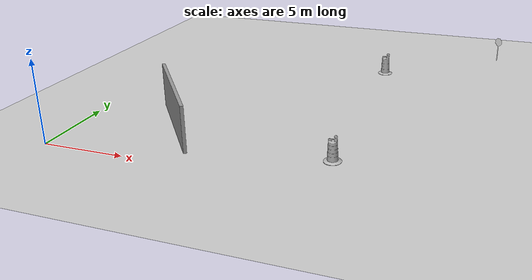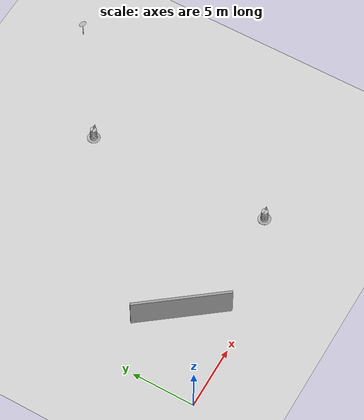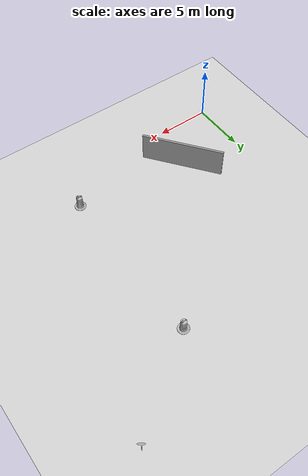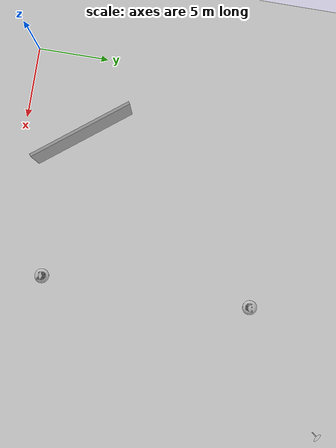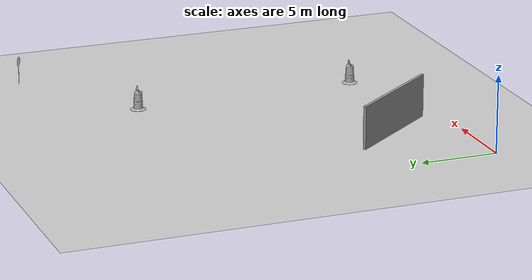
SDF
<sdf version="1.4">
 <world name="default">
  <light name="sun" type="directional">
   <pose>0 0 10 0 -0 0</pose>
   <diffuse>0.8 0.8 0.8 1</diffuse>
   <specular>0.2 0.2 0.2 1</specular>
   <attenuation>
    <range>1000</range>
    <constant>0.9</constant>
    <linear>0.01</linear>
    <quadratic>0.001</quadratic>
   </attenuation>
   <direction>-0.5 0.1 -0.9</direction>
  </light>
  <model name="ground_plane">
   <static>1</static>
   <link name="link">
    <collision name="collision">
     <geometry><plane><normal>0 0 1</normal><size>100 100</size></plane></geometry>
     <surface><friction><ode><mu>100</mu><mu2>50</mu2></ode></friction></surface>
    </collision>
    <visual name="visual">
     <cast_shadows>0</cast_shadows>
     <geometry><plane><normal>0 0 1</normal><size>100 100</size></plane></geometry>
     <material>
      <script><uri>file://media/materials/scripts/gazebo.material</uri><name>Gazebo/Grey</name></script>
     </material>
    </visual>
    <velocity_decay><linear>0</linear><angular>0</angular></velocity_decay>
   </link>
  </model>
  <physics type="ode">
   <max_step_size>0.001</max_step_size>
   <real_time_factor>1</real_time_factor>
   <real_time_update_rate>1000</real_time_update_rate>
   <gravity>0 0 -9.8</gravity>
  </physics>
  <scene><ambient>0.4 0.4 0.4 1</ambient><background>0.7 0.7 0.7 1</background><shadows>1</shadows></scene>
  <spherical_coordinates>
   <surface_model>EARTH_WGS84</surface_model>
   <latitude_deg>0</latitude_deg>
   <longitude_deg>0</longitude_deg>
   <elevation>0</elevation>
   <heading_deg>0</heading_deg>
  </spherical_coordinates>
  <model name="grey_wall">
   <static>1</static>
   <link name="link">
    <pose>0 0 1.4 0 -0 0</pose>
    <collision name="collision"><geometry><box><size>7.5 0.2 2.8</size></box></geometry></collision>
    <visual name="visual">
     <cast_shadows>0</cast_shadows>
     <geometry><box><size>7.5 0.2 2.8</size></box></geometry>
     <material>
      <script>
       <uri>model://grey_wall/materials/scripts</uri>
       <uri>model://grey_wall/materials/textures</uri>
       <name>vrc/grey_wall</name>
      </script>
     </material>
    </visual>
    <velocity_decay><linear>0</linear><angular>0</angular></velocity_decay>
   </link>
   <pose>5.81179 4.32403 0 0 0 -0.910256</pose>
  </model>
  <model name="Stop Sign">
   <link name="link">
    <collision name="collision">
     <geometry><mesh><uri>model://stop_sign/meshes/stop_sign.dae</uri></mesh></geometry>
    </collision>
    <visual name="visual">
     <geometry><mesh><uri>model://stop_sign/meshes/stop_sign.dae</uri></mesh></geometry>
     <material>
      <script>
       <uri>model://stop_sign/materials/scripts</uri>
       <uri>model://stop_sign/materials/textures</uri>
       <name>StopSign/Diffuse</name>
      </script>
     </material>
    </visual>
    <velocity_decay><linear>0</linear><angular>0</angular></velocity_decay>
    <inertial>
     <inertia><ixx>1</ixx><ixy>0</ixy><ixz>0</ixz><iyy>1</iyy><iyz>0</iyz><izz>1</izz></inertia>
     <mass>1</mass>
    </inertial>
   </link>
   <pose>23.5785 23.4846 2e-06 -0.000188 3e-06 -0.619609</pose>
   <static>0</static>
  </model>
  <model name="Construction Barrel_3">
   <link name="link">
    <inertial>
     <pose>0 0 0.4 0 -0 0</pose>
     <mass>500</mass>
     <inertia><ixx>51.2096</ixx><iyy>51.2096</iyy><izz>25</izz><ixy>0</ixy><ixz>0</ixz><iyz>0</iyz></inertia>
    </inertial>
    <collision name="collision">
     <geometry><mesh><uri>model://construction_barrel/meshes/construction_barrel.dae</uri></mesh></geometry>
    </collision>
    <visual name="visual">
     <geometry><mesh><uri>model://construction_barrel/meshes/construction_barrel.dae</uri></mesh></geometry>
    </visual>
    <velocity_decay><linear>0</linear><angular>0</angular></velocity_decay>
   </link>
   <pose>15.7735 17.811 -3e-06 1e-06 -7e-06 -0.000942</pose>
   <static>0</static>
  </model>
  <model name="Construction Barrel_6">
   <link name="link">
    <inertial>
     <pose>0 0 0.4 0 -0 0</pose>
     <mass>500</mass>
     <inertia><ixx>51.2096</ixx><iyy>51.2096</iyy><izz>25</izz><ixy>0</ixy><ixz>0</ixz><iyz>0</iyz></inertia>
    </inertial>
    <collision name="collision">
     <geometry><mesh><uri>model://construction_barrel/meshes/construction_barrel.dae</uri></mesh></geometry>
    </collision>
    <visual name="visual">
     <geometry><mesh><uri>model://construction_barrel/meshes/construction_barrel.dae</uri></mesh></geometry>
    </visual>
    <velocity_decay><linear>0</linear><angular>0</angular></velocity_decay>
   </link>
   <pose>16 3.00042 0 2e-06 2.06795e-25 -0.000741</pose>
   <static>0</static>
  </model>
 </world>
</sdf>
